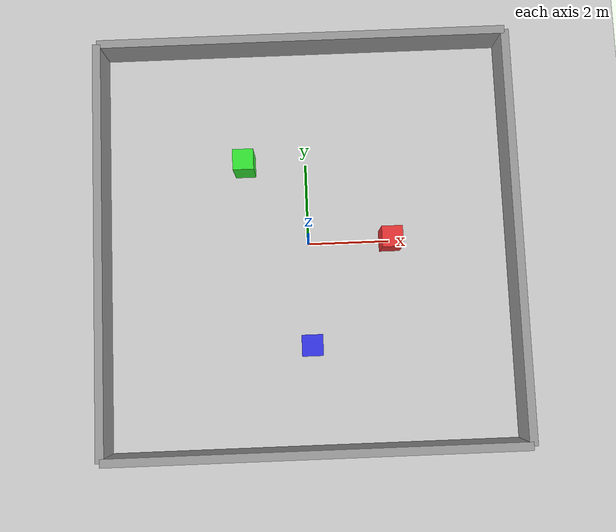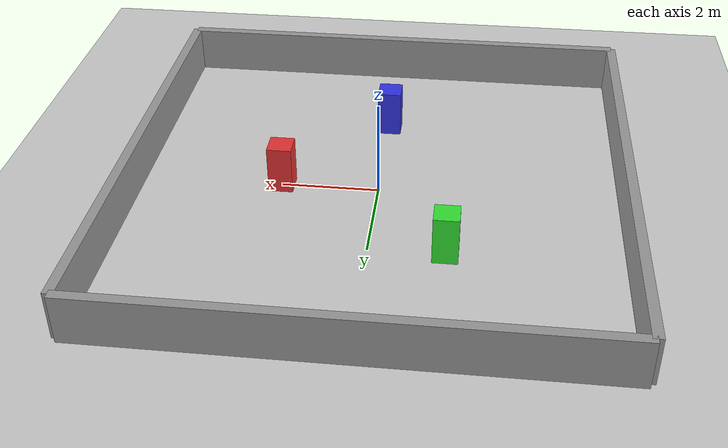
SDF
<?xml version="1.0"?>
<sdf version="1.9">
  <world name="my_world">
    <physics name="1ms" type="ignored">
      <max_step_size>0.001</max_step_size>
      <real_time_factor>1.0</real_time_factor>
    </physics>
    <plugin filename="gz-sim-physics-system" name="gz::sim::systems::Physics"/>
    <plugin filename="gz-sim-sensors-system" name="gz::sim::systems::Sensors">
      <render_engine>ogre2</render_engine>
    </plugin>
    <plugin filename="gz-sim-user-commands-system" name="gz::sim::systems::UserCommands"/>
    <plugin filename="gz-sim-scene-broadcaster-system" name="gz::sim::systems::SceneBroadcaster"/>

    <light type="directional" name="sun">
      <cast_shadows>true</cast_shadows>
      <pose>0 0 10 0 0 0</pose>
      <direction>-0.5 0.1 -0.9</direction>
    </light>

    <model name="ground_plane">
      <static>true</static>
      <link name="link">
        <collision name="collision">
          <geometry>
            <plane>
              <normal>0 0 1</normal>
              <size>100 100</size>
            </plane>
          </geometry>
          <surface>
            <friction>
              <ode>
                <mu>1.0</mu>
                <mu2>1.0</mu2>
              </ode>
            </friction>
          </surface>
        </collision>
        <visual name="visual">
          <geometry>
            <plane>
              <normal>0 0 1</normal>
              <size>100 100</size>
            </plane>
          </geometry>
          <material>
            <ambient>0.8 0.8 0.8 1</ambient>
            <diffuse>0.8 0.8 0.8 1</diffuse>
          </material>
        </visual>
      </link>
    </model>

    <!-- ===== A few box obstacles so the lidar has something to hit ===== -->
    <model name="box_1">
      <static>true</static>
      <pose>2 0 0.5 0 0 0</pose>
      <link name="link">
        <collision name="collision">
          <geometry><box><size>0.5 0.5 1.0</size></box></geometry>
        </collision>
        <visual name="visual">
          <geometry><box><size>0.5 0.5 1.0</size></box></geometry>
          <material>
            <ambient>0.9 0.2 0.2 1</ambient>
            <diffuse>0.9 0.2 0.2 1</diffuse>
          </material>
        </visual>
      </link>
    </model>

    <model name="box_2">
      <static>true</static>
      <pose>-1.5 2 0.5 0 0 0</pose>
      <link name="link">
        <collision name="collision">
          <geometry><box><size>0.5 0.5 1.0</size></box></geometry>
        </collision>
        <visual name="visual">
          <geometry><box><size>0.5 0.5 1.0</size></box></geometry>
          <material>
            <ambient>0.2 0.9 0.2 1</ambient>
            <diffuse>0.2 0.9 0.2 1</diffuse>
          </material>
        </visual>
      </link>
    </model>

    <model name="box_3">
      <static>true</static>
      <pose>0 -2.5 0.5 0 0 0</pose>
      <link name="link">
        <collision name="collision">
          <geometry><box><size>0.5 0.5 1.0</size></box></geometry>
        </collision>
        <visual name="visual">
          <geometry><box><size>0.5 0.5 1.0</size></box></geometry>
          <material>
            <ambient>0.2 0.2 0.9 1</ambient>
            <diffuse>0.2 0.2 0.9 1</diffuse>
          </material>
        </visual>
      </link>
    </model>

    <!-- ===== Perimeter walls so SLAM/Nav2 have a bounded map to build later ===== -->
    <model name="wall_north">
      <static>true</static>
      <pose>0 5 0.5 0 0 0</pose>
      <link name="link">
        <collision name="collision">
          <geometry><box><size>10 0.2 1.0</size></box></geometry>
        </collision>
        <visual name="visual">
          <geometry><box><size>10 0.2 1.0</size></box></geometry>
          <material><ambient>0.6 0.6 0.6 1</ambient><diffuse>0.6 0.6 0.6 1</diffuse></material>
        </visual>
      </link>
    </model>

    <model name="wall_south">
      <static>true</static>
      <pose>0 -5 0.5 0 0 0</pose>
      <link name="link">
        <collision name="collision">
          <geometry><box><size>10 0.2 1.0</size></box></geometry>
        </collision>
        <visual name="visual">
          <geometry><box><size>10 0.2 1.0</size></box></geometry>
          <material><ambient>0.6 0.6 0.6 1</ambient><diffuse>0.6 0.6 0.6 1</diffuse></material>
        </visual>
      </link>
    </model>

    <model name="wall_east">
      <static>true</static>
      <pose>5 0 0.5 0 0 1.5708</pose>
      <link name="link">
        <collision name="collision">
          <geometry><box><size>10 0.2 1.0</size></box></geometry>
        </collision>
        <visual name="visual">
          <geometry><box><size>10 0.2 1.0</size></box></geometry>
          <material><ambient>0.6 0.6 0.6 1</ambient><diffuse>0.6 0.6 0.6 1</diffuse></material>
        </visual>
      </link>
    </model>

    <model name="wall_west">
      <static>true</static>
      <pose>-5 0 0.5 0 0 1.5708</pose>
      <link name="link">
        <collision name="collision">
          <geometry><box><size>10 0.2 1.0</size></box></geometry>
        </collision>
        <visual name="visual">
          <geometry><box><size>10 0.2 1.0</size></box></geometry>
          <material><ambient>0.6 0.6 0.6 1</ambient><diffuse>0.6 0.6 0.6 1</diffuse></material>
        </visual>
      </link>
    </model>

  </world>
</sdf>
